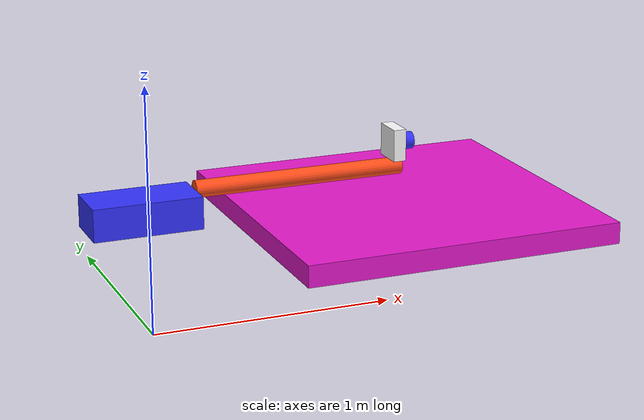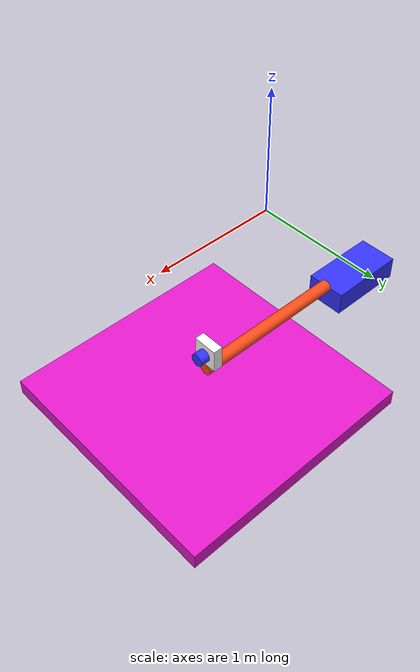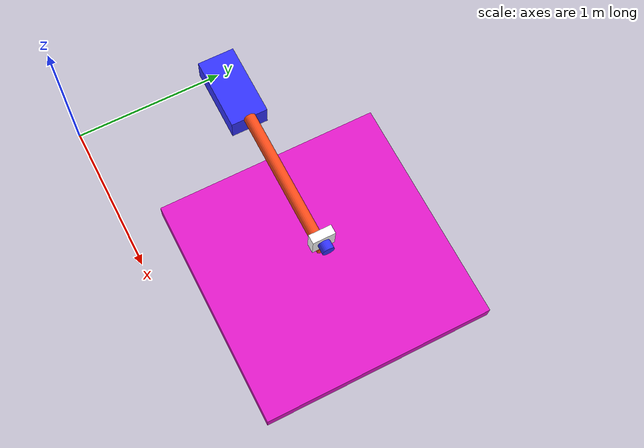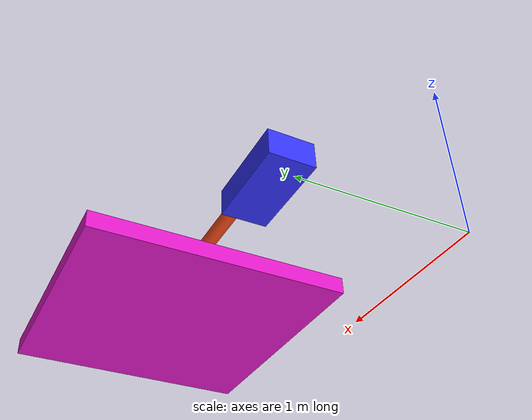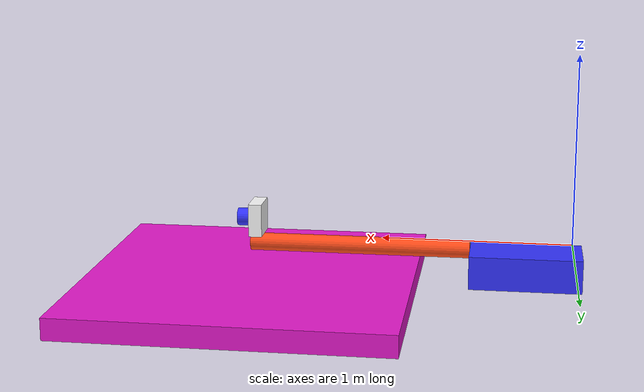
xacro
<?xml version="1.0"?>
<robot xmlns:xacro="http://www.ros.org/wiki/xacro"  name="robot">

    <!-- This is an example of a URDF. -->
    <!-- As we move through the file, new things to note will be pointed out. -->
    <!-- It's not meant an example of GOOD design, but an example of some of the various features of URDF/xacro. -->

    <!-- This will include all the contents of example_include.xacro first. Go check it out! -->
    <xacro:include filename="example_include.xacro" />

    <!-- This first link called "world" is empty -->
    <link name="world"></link>

    <!-- A simple fixed joint from our empty world link, to our base. -->
    <!-- The base origin is offset from the world origin. -->
    <joint name="base_joint" type="fixed">
        <origin xyz="1.5 1.0 0" rpy="0 0 0"/>
        <parent link="world"/>
        <child link="base_link"/>
    </joint>

    <!-- base_link is a large rectangular plate. Some things to note: -->
    <!-- - We set the visual origin Z to half the box height, so that the link origin sits at the bottom of the box -->
    <!-- - We set the collision to be identical to the visual -->
    <!-- - We specified the colour manually (but still need to enter a name) -->
    <!-- - We specified all the inertial parameters manually -->
    <link name="base_link">
        <visual>
            <origin xyz="0 0 0.05" rpy="0 0 0"/>
            <geometry>
                <box size="1.5 1.5 0.1" />
            </geometry>
            <material name="purple">
                <color rgba="0.9 .1 0.8 1"/>
            </material>
        </visual>
        <collision>
            <origin xyz="0 0 0.05" rpy="0 0 0"/>
            <geometry>
                <box size="2.5 1.5 0.1" />
            </geometry>
        </collision>
        <inertial>
            <origin xyz="0 0 0.05" rpy="0 0 0"/>
            <mass value="12" />
            <inertia ixx="2.26" ixy="0.0" ixz="0.0" iyy="6.26" iyz="0.0" izz="8.5" />
        </inertial>
    </link>

    <!-- slider_joint lets slider_link move back and forth along the top of the base in one dimension.  -->
    <!-- - Origin is set to one of the top edges of the base_link box, so that our link skims across the top  -->
    <!-- - It moves along the X axis -->
    <!-- - We need to specify limits for the motion -->
    <joint name="slider_joint" type="prismatic">
        <origin xyz="-1.25 0 0.1" rpy="0 0 0"/>
        <parent link="base_link"/>
        <child link="slider_link"/>
        <axis xyz="1 0 0"/>
        <limit lower="0" upper="2" velocity="100" effort="100"/>
        <dynamics damping="10.0" friction="10.0"/>
    </joint>

    <!-- slider_link is the box skimming across the top of the base. Its parameters are similar to the base_link, however: -->
    <!-- - Instead of explicitly describing a colour, it uses the named material "blue". It knows about "blue" that material was included in example_include.xacro. -->
    <!-- - Instead of explicitly describing the inertia, we use a macro that was defined in the example_include.xacro -->

    <link name="slider_link">
        <visual>
            <origin xyz="0 0 0.075" rpy="0 0 0"/>
            <geometry>
                <box size="0.5 0.25 0.15" />
            </geometry>
            <material name="blue" />
        </visual>
        <collision>
            <origin xyz="0 0 0.075" rpy="0 0 0"/>
            <geometry>
                <box size="0.5 0.25 0.15" />
            </geometry>
        </collision>
        <xacro:inertial_box mass="0.5" x="0.5" y="0.25" z="0.15">
            <origin xyz="0 0 0.075" rpy="0 0 0"/>
        </xacro:inertial_box>
    </link>

    <!-- arm_joint describes the rotation of the arm and is centred around the top corner of the slider box. -->
    <!-- - The axis of rotation is -1 in Y, so that positive is "up" -->
    <!-- - The upper limit uses xacro's mathematical features -->
    <joint name="arm_joint" type="revolute">
        <origin xyz="0.25 0 0.15" rpy="0 0 0"/>
        <parent link="slider_link"/>
        <child link="arm_link"/>
        <axis xyz="0 -1 0"/>
        <limit lower="0" upper="${pi/2}" velocity="100" effort="100"/>
        <dynamics damping="10.0" friction="10.0"/>
    </joint>

    <!-- arm_link describes the arm -->
    <!-- - We use the "property" feature to define the arm length and radius and use them multiple times -->
    <!-- - The visual/collision origin is set to halfway along the length (similar to the box), but also with a rotation (again using the mathematical features). -->
    <!--   This is because the cylinder extends along the Z axis by default, but we want it to be along the X axis (when the joint is at 0) -->

    <xacro:property name="arm_length" value="1" />
    <xacro:property name="arm_radius" value="0.04" />
    <link name="arm_link">
        <visual>
            <origin xyz="${arm_length/2} 0 0" rpy="0 ${pi/2} 0"/>
            <geometry>
                <cylinder length="${arm_length}" radius="${arm_radius}" />
            </geometry>
            <material name="orange" />
        </visual>
        <collision>
            <origin xyz="${arm_length/2} 0 0" rpy="0 ${pi/2} 0"/>
            <geometry>
                <cylinder length="${arm_length}" radius="${arm_radius}" />
            </geometry>
        </collision>
        <xacro:inertial_cylinder mass="1.0" length="${arm_length}" radius="${arm_radius}">
            <origin xyz="${arm_length/2} 0 0" rpy="0 ${pi/2} 0"/>
        </xacro:inertial_cylinder>
    </link>

    <!-- camera_joint describes where the camera is relative to the arm -->
    <!-- - Even though the camera isn't moving relative to the arm, it will probably be helpful to have its own link/frame rather than just adding more visuals to the arm -->
    <!-- - For this example, the camera_link origin will be at the centre of the camera's "sensor" -->
    <joint name="camera_joint" type="fixed">
        <origin xyz="${arm_length} 0 ${arm_radius + 0.075}" rpy="0 0 0"/>
        <parent link="arm_link"/>
        <child link="camera_link"/>
    </joint>

    <!-- camera_link describes the camera at the end of the arm -->
    <!-- - It has multiple visual elements, which ultimately get combined together -->
    <!-- - Even if we specify different materials, RViz will just colour them all the same as the first -->
    <!-- - Although we could also specify multiple collision geometries, instead we just use a single box that encompasses the whole camera -->
    <link name="camera_link">
        <visual>
            <origin xyz="-0.03 0 0" rpy="0 0 0"/>
            <geometry>
                <box size="0.06 0.15 0.15" />
            </geometry>
            <material name="white" />
        </visual>
        <visual>
            <origin xyz="0.03 0 0" rpy="0 ${pi/2} 0"/>
            <geometry>
                <cylinder length="0.06" radius="0.04" />
            </geometry>
            <material name="blue" />
        </visual>
        <collision>
            <origin xyz="0.0 0 0" rpy="0 0 0"/>
            <geometry>
                <box size="0.12 0.15 0.15" />
            </geometry>
        </collision>
        <xacro:inertial_box mass="0.1" x="0.12" y="0.15" z="0.15">
            <origin xyz="0.0 0 0" rpy="0 0 0"/>
        </xacro:inertial_box>
    </link>

</robot>

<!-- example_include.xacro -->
<robot xmlns:xacro="http://www.ros.org/wiki/xacro" >

    <!-- This file is not a robot in and of itself, it just contains some useful tags that could be included in any robot -->

    <!-- Specify some colours -->

    <material name="white">
        <color rgba="1 1 1 1"/>
    </material>

    <material name="orange">
        <color rgba="1 0.3 0.1 1"/>
    </material>

    <material name="blue">
        <color rgba="0.2 0.2 1 1"/>
    </material>

    <!-- Specify some standard inertial calculations https://en.wikipedia.org/wiki/List_of_moments_of_inertia -->
    <!-- These make use of xacro's mathematical functionality -->

    <xacro:macro name="inertial_sphere" params="mass radius *origin">
        <inertial>
            <xacro:insert_block name="origin"/>
            <mass value="${mass}" />
            <inertia ixx="${(2/5) * mass * (radius*radius)}" ixy="0.0" ixz="0.0"
                    iyy="${(2/5) * mass * (radius*radius)}" iyz="0.0"
                    izz="${(2/5) * mass * (radius*radius)}" />
        </inertial>
    </xacro:macro>

    <xacro:macro name="inertial_box" params="mass x y z *origin">
        <inertial>
            <xacro:insert_block name="origin"/>
            <mass value="${mass}" />
            <inertia ixx="${(1/12) * mass * (y*y+z*z)}" ixy="0.0" ixz="0.0"
                    iyy="${(1/12) * mass * (x*x+z*z)}" iyz="0.0"
                    izz="${(1/12) * mass * (x*x+y*y)}" />
        </inertial>
    </xacro:macro>

    <xacro:macro name="inertial_cylinder" params="mass length radius *origin">
        <inertial>
            <xacro:insert_block name="origin"/>
            <mass value="${mass}" />
            <inertia ixx="${(1/12) * mass * (3*radius*radius + length*length)}" ixy="0.0" ixz="0.0"
                    iyy="${(1/12) * mass * (3*radius*radius + length*length)}" iyz="0.0"
                    izz="${(1/2) * mass * (radius*radius)}" />
        </inertial>
    </xacro:macro>

</robot>
